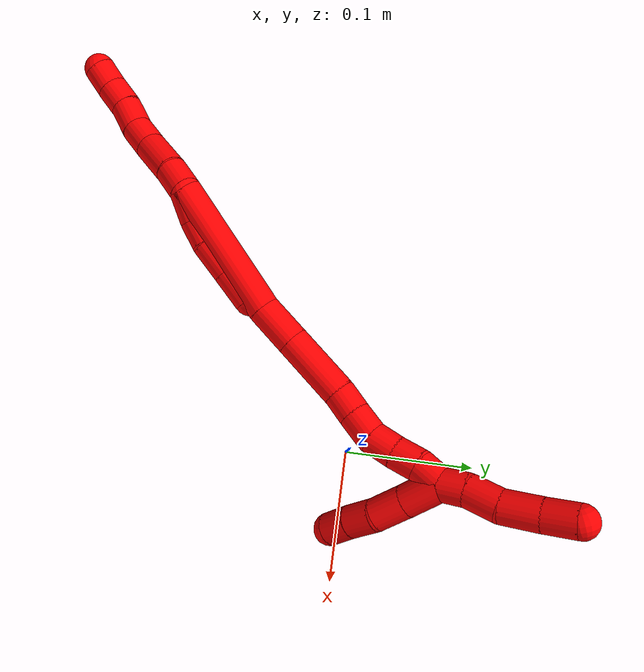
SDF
<sdf version="1.7">
 <world name="default">
  <model name="2">
   <static>0</static>
   <link name="2">
    <collision name="collision-cylinder-e_1_2_8">
     <pose>-0.00651 -0.002785 0.00963 0.281483 -0.575955 -0.083884</pose>
     <geometry><cylinder><radius>0.0125</radius><length>0.023907</length></cylinder></geometry>
     <surface>
      <friction><ode><mu>1.16</mu><mu2>1.16</mu2><slip1>0</slip1><slip2>0</slip2></ode></friction>
      <contact><ode><kp>1e+06</kp><kd>1</kd><max_vel>0</max_vel><min_depth>0.001</min_depth></ode></contact>
     </surface>
    </collision>
    <visual name="visual-cylinder-e_1_2_8">
     <pose>-0.00651 -0.002785 0.00963 0.281483 -0.575955 -0.083884</pose>
     <geometry><cylinder><radius>0.0125</radius><length>0.023907</length></cylinder></geometry>
     <material><ambient>1 0 0 1</ambient></material>
    </visual>
    <collision name="collision-cylinder-e_2_8_9">
     <pose>-0.025005 -0.010102 0.03224 0.335969 -0.716947 -0.126902</pose>
     <geometry><cylinder><radius>0.0125</radius><length>0.036477</length></cylinder></geometry>
     <surface>
      <friction><ode><mu>1.16</mu><mu2>1.16</mu2><slip1>0</slip1><slip2>0</slip2></ode></friction>
      <contact><ode><kp>1e+06</kp><kd>1</kd><max_vel>0</max_vel><min_depth>0.001</min_depth></ode></contact>
     </surface>
    </collision>
    <visual name="visual-cylinder-e_2_8_9">
     <pose>-0.025005 -0.010102 0.03224 0.335969 -0.716947 -0.126902</pose>
     <geometry><cylinder><radius>0.0125</radius><length>0.036477</length></cylinder></geometry>
     <material><ambient>1 0 0 1</ambient></material>
    </visual>
    <collision name="collision-cylinder-e_3_9_10">
     <pose>-0.043184 -0.017877 0.054629 0.331852 -0.556808 -0.09566</pose>
     <geometry><cylinder><radius>0.0125</radius><length>0.023446</length></cylinder></geometry>
     <surface>
      <friction><ode><mu>1.16</mu><mu2>1.16</mu2><slip1>0</slip1><slip2>0</slip2></ode></friction>
      <contact><ode><kp>1e+06</kp><kd>1</kd><max_vel>0</max_vel><min_depth>0.001</min_depth></ode></contact>
     </surface>
    </collision>
    <visual name="visual-cylinder-e_3_9_10">
     <pose>-0.043184 -0.017877 0.054629 0.331852 -0.556808 -0.09566</pose>
     <geometry><cylinder><radius>0.0125</radius><length>0.023446</length></cylinder></geometry>
     <material><ambient>1 0 0 1</ambient></material>
    </visual>
    <collision name="collision-cylinder-e_4_10_11">
     <pose>-0.054057 -0.023021 0.074951 0.172485 -0.399577 -0.03501</pose>
     <geometry><cylinder><radius>0.0125</radius><length>0.024048</length></cylinder></geometry>
     <surface>
      <friction><ode><mu>1.16</mu><mu2>1.16</mu2><slip1>0</slip1><slip2>0</slip2></ode></friction>
      <contact><ode><kp>1e+06</kp><kd>1</kd><max_vel>0</max_vel><min_depth>0.001</min_depth></ode></contact>
     </surface>
    </collision>
    <visual name="visual-cylinder-e_4_10_11">
     <pose>-0.054057 -0.023021 0.074951 0.172485 -0.399577 -0.03501</pose>
     <geometry><cylinder><radius>0.0125</radius><length>0.024048</length></cylinder></geometry>
     <material><ambient>1 0 0 1</ambient></material>
    </visual>
    <collision name="collision-cylinder-e_5_11_12">
     <pose>-0.062679 -0.028384 0.095446 0.346692 -0.369351 -0.065397</pose>
     <geometry><cylinder><radius>0.0125</radius><length>0.021852</length></cylinder></geometry>
     <surface>
      <friction><ode><mu>1.16</mu><mu2>1.16</mu2><slip1>0</slip1><slip2>0</slip2></ode></friction>
      <contact><ode><kp>1e+06</kp><kd>1</kd><max_vel>0</max_vel><min_depth>0.001</min_depth></ode></contact>
     </surface>
    </collision>
    <visual name="visual-cylinder-e_5_11_12">
     <pose>-0.062679 -0.028384 0.095446 0.346692 -0.369351 -0.065397</pose>
     <geometry><cylinder><radius>0.0125</radius><length>0.021852</length></cylinder></geometry>
     <material><ambient>1 0 0 1</ambient></material>
    </visual>
    <collision name="collision-cylinder-e_6_12_6">
     <pose>-0.068507 -0.034954 0.114491 0.317368 -0.18695 -0.030003</pose>
     <geometry><cylinder><radius>0.0125</radius><length>0.020271</length></cylinder></geometry>
     <surface>
      <friction><ode><mu>1.16</mu><mu2>1.16</mu2><slip1>0</slip1><slip2>0</slip2></ode></friction>
      <contact><ode><kp>1e+06</kp><kd>1</kd><max_vel>0</max_vel><min_depth>0.001</min_depth></ode></contact>
     </surface>
    </collision>
    <visual name="visual-cylinder-e_6_12_6">
     <pose>-0.068507 -0.034954 0.114491 0.317368 -0.18695 -0.030003</pose>
     <geometry><cylinder><radius>0.0125</radius><length>0.020271</length></cylinder></geometry>
     <material><ambient>1 0 0 1</ambient></material>
    </visual>
    <collision name="collision-cylinder-e_1_2_13">
     <pose>-0.00082 0.001346 -0.012068 -3.03054 -0.067434 1.09085</pose>
     <geometry><cylinder><radius>0.0125</radius><length>0.024341</length></cylinder></geometry>
     <surface>
      <friction><ode><mu>1.16</mu><mu2>1.16</mu2><slip1>0</slip1><slip2>0</slip2></ode></friction>
      <contact><ode><kp>1e+06</kp><kd>1</kd><max_vel>0</max_vel><min_depth>0.001</min_depth></ode></contact>
     </surface>
    </collision>
    <visual name="visual-cylinder-e_1_2_13">
     <pose>-0.00082 0.001346 -0.012068 -3.03054 -0.067434 1.09085</pose>
     <geometry><cylinder><radius>0.0125</radius><length>0.024341</length></cylinder></geometry>
     <material><ambient>1 0 0 1</ambient></material>
    </visual>
    <collision name="collision-cylinder-e_2_13_14">
     <pose>-6.9e-05 0.004779 -0.033826 -2.92936 0.157228 -1.27358</pose>
     <geometry><cylinder><radius>0.0125</radius><length>0.020072</length></cylinder></geometry>
     <surface>
      <friction><ode><mu>1.16</mu><mu2>1.16</mu2><slip1>0</slip1><slip2>0</slip2></ode></friction>
      <contact><ode><kp>1e+06</kp><kd>1</kd><max_vel>0</max_vel><min_depth>0.001</min_depth></ode></contact>
     </surface>
    </collision>
    <visual name="visual-cylinder-e_2_13_14">
     <pose>-6.9e-05 0.004779 -0.033826 -2.92936 0.157228 -1.27358</pose>
     <geometry><cylinder><radius>0.0125</radius><length>0.020072</length></cylinder></geometry>
     <material><ambient>1 0 0 1</ambient></material>
    </visual>
    <collision name="collision-cylinder-e_3_14_15">
     <pose>0.003797 0.011955 -0.056218 -2.76062 0.166157 -0.815297</pose>
     <geometry><cylinder><radius>0.0125</radius><length>0.02775</length></cylinder></geometry>
     <surface>
      <friction><ode><mu>1.16</mu><mu2>1.16</mu2><slip1>0</slip1><slip2>0</slip2></ode></friction>
      <contact><ode><kp>1e+06</kp><kd>1</kd><max_vel>0</max_vel><min_depth>0.001</min_depth></ode></contact>
     </surface>
    </collision>
    <visual name="visual-cylinder-e_3_14_15">
     <pose>0.003797 0.011955 -0.056218 -2.76062 0.166157 -0.815297</pose>
     <geometry><cylinder><radius>0.0125</radius><length>0.02775</length></cylinder></geometry>
     <material><ambient>1 0 0 1</ambient></material>
    </visual>
    <collision name="collision-cylinder-e_4_15_5">
     <pose>0.008367 0.022081 -0.081695 -2.76596 0.164137 -0.816887</pose>
     <geometry><cylinder><radius>0.0125</radius><length>0.027838</length></cylinder></geometry>
     <surface>
      <friction><ode><mu>1.16</mu><mu2>1.16</mu2><slip1>0</slip1><slip2>0</slip2></ode></friction>
      <contact><ode><kp>1e+06</kp><kd>1</kd><max_vel>0</max_vel><min_depth>0.001</min_depth></ode></contact>
     </surface>
    </collision>
    <visual name="visual-cylinder-e_4_15_5">
     <pose>0.008367 0.022081 -0.081695 -2.76596 0.164137 -0.816887</pose>
     <geometry><cylinder><radius>0.0125</radius><length>0.027838</length></cylinder></geometry>
     <material><ambient>1 0 0 1</ambient></material>
    </visual>
    <collision name="collision-cylinder-e_1_2_16">
     <pose>0.008794 0.01739 -0.051825 -2.81784 0.15951 -0.910292</pose>
     <geometry><cylinder><radius>0.0125</radius><length>0.110735</length></cylinder></geometry>
     <surface>
      <friction><ode><mu>1.16</mu><mu2>1.16</mu2><slip1>0</slip1><slip2>0</slip2></ode></friction>
      <contact><ode><kp>1e+06</kp><kd>1</kd><max_vel>0</max_vel><min_depth>0.001</min_depth></ode></contact>
     </surface>
    </collision>
    <visual name="visual-cylinder-e_1_2_16">
     <pose>0.008794 0.01739 -0.051825 -2.81784 0.15951 -0.910292</pose>
     <geometry><cylinder><radius>0.0125</radius><length>0.110735</length></cylinder></geometry>
     <material><ambient>1 0 0 1</ambient></material>
    </visual>
    <collision name="collision-cylinder-e_2_16_17">
     <pose>0.022581 0.041897 -0.118173 -2.68598 0.299416 -1.15364</pose>
     <geometry><cylinder><radius>0.0125</radius><length>0.033851</length></cylinder></geometry>
     <surface>
      <friction><ode><mu>1.16</mu><mu2>1.16</mu2><slip1>0</slip1><slip2>0</slip2></ode></friction>
      <contact><ode><kp>1e+06</kp><kd>1</kd><max_vel>0</max_vel><min_depth>0.001</min_depth></ode></contact>
     </surface>
    </collision>
    <visual name="visual-cylinder-e_2_16_17">
     <pose>0.022581 0.041897 -0.118173 -2.68598 0.299416 -1.15364</pose>
     <geometry><cylinder><radius>0.0125</radius><length>0.033851</length></cylinder></geometry>
     <material><ambient>1 0 0 1</ambient></material>
    </visual>
    <collision name="collision-cylinder-e_3_17_18">
     <pose>0.035588 0.059978 -0.155178 -2.68782 0.310051 -1.19017</pose>
     <geometry><cylinder><radius>0.0125</radius><length>0.052534</length></cylinder></geometry>
     <surface>
      <friction><ode><mu>1.16</mu><mu2>1.16</mu2><slip1>0</slip1><slip2>0</slip2></ode></friction>
      <contact><ode><kp>1e+06</kp><kd>1</kd><max_vel>0</max_vel><min_depth>0.001</min_depth></ode></contact>
     </surface>
    </collision>
    <visual name="visual-cylinder-e_3_17_18">
     <pose>0.035588 0.059978 -0.155178 -2.68782 0.310051 -1.19017</pose>
     <geometry><cylinder><radius>0.0125</radius><length>0.052534</length></cylinder></geometry>
     <material><ambient>1 0 0 1</ambient></material>
    </visual>
    <collision name="collision-cylinder-e_4_18_19">
     <pose>0.047642 0.073843 -0.186478 -2.82388 0.410598 -1.83005</pose>
     <geometry><cylinder><radius>0.0125</radius><length>0.020245</length></cylinder></geometry>
     <surface>
      <friction><ode><mu>1.16</mu><mu2>1.16</mu2><slip1>0</slip1><slip2>0</slip2></ode></friction>
      <contact><ode><kp>1e+06</kp><kd>1</kd><max_vel>0</max_vel><min_depth>0.001</min_depth></ode></contact>
     </surface>
    </collision>
    <visual name="visual-cylinder-e_4_18_19">
     <pose>0.047642 0.073843 -0.186478 -2.82388 0.410598 -1.83005</pose>
     <geometry><cylinder><radius>0.0125</radius><length>0.020245</length></cylinder></geometry>
     <material><ambient>1 0 0 1</ambient></material>
    </visual>
    <collision name="collision-cylinder-e_5_19_20">
     <pose>0.056539 0.07997 -0.204409 -2.80118 0.465442 -1.8868</pose>
     <geometry><cylinder><radius>0.0125</radius><length>0.02164</length></cylinder></geometry>
     <surface>
      <friction><ode><mu>1.16</mu><mu2>1.16</mu2><slip1>0</slip1><slip2>0</slip2></ode></friction>
      <contact><ode><kp>1e+06</kp><kd>1</kd><max_vel>0</max_vel><min_depth>0.001</min_depth></ode></contact>
     </surface>
    </collision>
    <visual name="visual-cylinder-e_5_19_20">
     <pose>0.056539 0.07997 -0.204409 -2.80118 0.465442 -1.8868</pose>
     <geometry><cylinder><radius>0.0125</radius><length>0.02164</length></cylinder></geometry>
     <material><ambient>1 0 0 1</ambient></material>
    </visual>
    <collision name="collision-cylinder-e_6_20_21">
     <pose>0.066394 0.089153 -0.220258 -2.4177 0.507484 -1.20107</pose>
     <geometry><cylinder><radius>0.0125</radius><length>0.020574</length></cylinder></geometry>
     <surface>
      <friction><ode><mu>1.16</mu><mu2>1.16</mu2><slip1>0</slip1><slip2>0</slip2></ode></friction>
      <contact><ode><kp>1e+06</kp><kd>1</kd><max_vel>0</max_vel><min_depth>0.001</min_depth></ode></contact>
     </surface>
    </collision>
    <visual name="visual-cylinder-e_6_20_21">
     <pose>0.066394 0.089153 -0.220258 -2.4177 0.507484 -1.20107</pose>
     <geometry><cylinder><radius>0.0125</radius><length>0.020574</length></cylinder></geometry>
     <material><ambient>1 0 0 1</ambient></material>
    </visual>
    <collision name="collision-cylinder-e_7_21_22">
     <pose>0.077028 0.101144 -0.232873 -2.34291 0.589366 -1.247</pose>
     <geometry><cylinder><radius>0.0125</radius><length>0.020273</length></cylinder></geometry>
     <surface>
      <friction><ode><mu>1.16</mu><mu2>1.16</mu2><slip1>0</slip1><slip2>0</slip2></ode></friction>
      <contact><ode><kp>1e+06</kp><kd>1</kd><max_vel>0</max_vel><min_depth>0.001</min_depth></ode></contact>
     </surface>
    </collision>
    <visual name="visual-cylinder-e_7_21_22">
     <pose>0.077028 0.101144 -0.232873 -2.34291 0.589366 -1.247</pose>
     <geometry><cylinder><radius>0.0125</radius><length>0.020273</length></cylinder></geometry>
     <material><ambient>1 0 0 1</ambient></material>
    </visual>
    <collision name="collision-cylinder-e_8_22_1">
     <pose>0.088218 0.111534 -0.24594 -2.59715 0.584156 -1.64501</pose>
     <geometry><cylinder><radius>0.0125</radius><length>0.020149</length></cylinder></geometry>
     <surface>
      <friction><ode><mu>1.16</mu><mu2>1.16</mu2><slip1>0</slip1><slip2>0</slip2></ode></friction>
      <contact><ode><kp>1e+06</kp><kd>1</kd><max_vel>0</max_vel><min_depth>0.001</min_depth></ode></contact>
     </surface>
    </collision>
    <visual name="visual-cylinder-e_8_22_1">
     <pose>0.088218 0.111534 -0.24594 -2.59715 0.584156 -1.64501</pose>
     <geometry><cylinder><radius>0.0125</radius><length>0.020149</length></cylinder></geometry>
     <material><ambient>1 0 0 1</ambient></material>
    </visual>
    <collision name="collision-cylinder-e_1_1_23">
     <pose>0.099913 0.123103 -0.256356 -1.99126 0.660308 -0.972563</pose>
     <geometry><cylinder><radius>0.0125</radius><length>0.020019</length></cylinder></geometry>
     <surface>
      <friction><ode><mu>1.16</mu><mu2>1.16</mu2><slip1>0</slip1><slip2>0</slip2></ode></friction>
      <contact><ode><kp>1e+06</kp><kd>1</kd><max_vel>0</max_vel><min_depth>0.001</min_depth></ode></contact>
     </surface>
    </collision>
    <visual name="visual-cylinder-e_1_1_23">
     <pose>0.099913 0.123103 -0.256356 -1.99126 0.660308 -0.972563</pose>
     <geometry><cylinder><radius>0.0125</radius><length>0.020019</length></cylinder></geometry>
     <material><ambient>1 0 0 1</ambient></material>
    </visual>
    <collision name="collision-cylinder-e_2_23_24">
     <pose>0.114242 0.137691 -0.265911 -2.28025 0.700429 -1.34343</pose>
     <geometry><cylinder><radius>0.0125</radius><length>0.025413</length></cylinder></geometry>
     <surface>
      <friction><ode><mu>1.16</mu><mu2>1.16</mu2><slip1>0</slip1><slip2>0</slip2></ode></friction>
      <contact><ode><kp>1e+06</kp><kd>1</kd><max_vel>0</max_vel><min_depth>0.001</min_depth></ode></contact>
     </surface>
    </collision>
    <visual name="visual-cylinder-e_2_23_24">
     <pose>0.114242 0.137691 -0.265911 -2.28025 0.700429 -1.34343</pose>
     <geometry><cylinder><radius>0.0125</radius><length>0.025413</length></cylinder></geometry>
     <material><ambient>1 0 0 1</ambient></material>
    </visual>
    <collision name="collision-cylinder-e_3_24_25">
     <pose>0.131489 0.155747 -0.276659 -1.96296 0.664438 -0.952793</pose>
     <geometry><cylinder><radius>0.0125</radius><length>0.029375</length></cylinder></geometry>
     <surface>
      <friction><ode><mu>1.16</mu><mu2>1.16</mu2><slip1>0</slip1><slip2>0</slip2></ode></friction>
      <contact><ode><kp>1e+06</kp><kd>1</kd><max_vel>0</max_vel><min_depth>0.001</min_depth></ode></contact>
     </surface>
    </collision>
    <visual name="visual-cylinder-e_3_24_25">
     <pose>0.131489 0.155747 -0.276659 -1.96296 0.664438 -0.952793</pose>
     <geometry><cylinder><radius>0.0125</radius><length>0.029375</length></cylinder></geometry>
     <material><ambient>1 0 0 1</ambient></material>
    </visual>
    <collision name="collision-cylinder-e_4_25_4">
     <pose>0.14906 0.175212 -0.284093 -1.90162 0.742299 -0.998244</pose>
     <geometry><cylinder><radius>0.0125</radius><length>0.025193</length></cylinder></geometry>
     <surface>
      <friction><ode><mu>1.16</mu><mu2>1.16</mu2><slip1>0</slip1><slip2>0</slip2></ode></friction>
      <contact><ode><kp>1e+06</kp><kd>1</kd><max_vel>0</max_vel><min_depth>0.001</min_depth></ode></contact>
     </surface>
    </collision>
    <visual name="visual-cylinder-e_4_25_4">
     <pose>0.14906 0.175212 -0.284093 -1.90162 0.742299 -0.998244</pose>
     <geometry><cylinder><radius>0.0125</radius><length>0.025193</length></cylinder></geometry>
     <material><ambient>1 0 0 1</ambient></material>
    </visual>
    <collision name="collision-cylinder-e_1_1_26">
     <pose>0.085781 0.104132 -0.257423 1.92103 -0.568398 -0.791327</pose>
     <geometry><cylinder><radius>0.0125</radius><length>0.029697</length></cylinder></geometry>
     <surface>
      <friction><ode><mu>1.16</mu><mu2>1.16</mu2><slip1>0</slip1><slip2>0</slip2></ode></friction>
      <contact><ode><kp>1e+06</kp><kd>1</kd><max_vel>0</max_vel><min_depth>0.001</min_depth></ode></contact>
     </surface>
    </collision>
    <visual name="visual-cylinder-e_1_1_26">
     <pose>0.085781 0.104132 -0.257423 1.92103 -0.568398 -0.791327</pose>
     <geometry><cylinder><radius>0.0125</radius><length>0.029697</length></cylinder></geometry>
     <material><ambient>1 0 0 1</ambient></material>
    </visual>
    <collision name="collision-cylinder-e_2_26_27">
     <pose>0.070947 0.081838 -0.265206 1.89048 -0.552221 -0.74765</pose>
     <geometry><cylinder><radius>0.0125</radius><length>0.026083</length></cylinder></geometry>
     <surface>
      <friction><ode><mu>1.16</mu><mu2>1.16</mu2><slip1>0</slip1><slip2>0</slip2></ode></friction>
      <contact><ode><kp>1e+06</kp><kd>1</kd><max_vel>0</max_vel><min_depth>0.001</min_depth></ode></contact>
     </surface>
    </collision>
    <visual name="visual-cylinder-e_2_26_27">
     <pose>0.070947 0.081838 -0.265206 1.89048 -0.552221 -0.74765</pose>
     <geometry><cylinder><radius>0.0125</radius><length>0.026083</length></cylinder></geometry>
     <material><ambient>1 0 0 1</ambient></material>
    </visual>
    <collision name="collision-cylinder-e_3_27_28">
     <pose>0.056176 0.063337 -0.27059 1.80448 -0.769673 -0.947602</pose>
     <geometry><cylinder><radius>0.0125</radius><length>0.022789</length></cylinder></geometry>
     <surface>
      <friction><ode><mu>1.16</mu><mu2>1.16</mu2><slip1>0</slip1><slip2>0</slip2></ode></friction>
      <contact><ode><kp>1e+06</kp><kd>1</kd><max_vel>0</max_vel><min_depth>0.001</min_depth></ode></contact>
     </surface>
    </collision>
    <visual name="visual-cylinder-e_3_27_28">
     <pose>0.056176 0.063337 -0.27059 1.80448 -0.769673 -0.947602</pose>
     <geometry><cylinder><radius>0.0125</radius><length>0.022789</length></cylinder></geometry>
     <material><ambient>1 0 0 1</ambient></material>
    </visual>
    <collision name="collision-cylinder-e_4_28_3">
     <pose>0.040626 0.048248 -0.274923 1.9003 -0.791111 -1.05729</pose>
     <geometry><cylinder><radius>0.0125</radius><length>0.02143</length></cylinder></geometry>
     <surface>
      <friction><ode><mu>1.16</mu><mu2>1.16</mu2><slip1>0</slip1><slip2>0</slip2></ode></friction>
      <contact><ode><kp>1e+06</kp><kd>1</kd><max_vel>0</max_vel><min_depth>0.001</min_depth></ode></contact>
     </surface>
    </collision>
    <visual name="visual-cylinder-e_4_28_3">
     <pose>0.040626 0.048248 -0.274923 1.9003 -0.791111 -1.05729</pose>
     <geometry><cylinder><radius>0.0125</radius><length>0.02143</length></cylinder></geometry>
     <material><ambient>1 0 0 1</ambient></material>
    </visual>
    <collision name="collision-sphere-3">
     <pose>0.033006 0.04112 -0.27736 0 -0 0</pose>
     <geometry><sphere><radius>0.0125</radius></sphere></geometry>
     <surface>
      <friction><ode><mu>1.16</mu><mu2>1.16</mu2><slip1>0</slip1><slip2>0</slip2></ode></friction>
      <contact><ode><kp>1e+06</kp><kd>1</kd><max_vel>0</max_vel><min_depth>0.001</min_depth></ode></contact>
     </surface>
    </collision>
    <visual name="visual-sphere-3">
     <pose>0.033006 0.04112 -0.27736 0 -0 0</pose>
     <geometry><sphere><radius>0.0125</radius></sphere></geometry>
     <material><ambient>1 0 0 1</ambient></material>
    </visual>
    <collision name="collision-sphere-28">
     <pose>0.048246 0.055376 -0.272485 0 -0 0</pose>
     <geometry><sphere><radius>0.0125</radius></sphere></geometry>
     <surface>
      <friction><ode><mu>1.16</mu><mu2>1.16</mu2><slip1>0</slip1><slip2>0</slip2></ode></friction>
      <contact><ode><kp>1e+06</kp><kd>1</kd><max_vel>0</max_vel><min_depth>0.001</min_depth></ode></contact>
     </surface>
    </collision>
    <visual name="visual-sphere-28">
     <pose>0.048246 0.055376 -0.272485 0 -0 0</pose>
     <geometry><sphere><radius>0.0125</radius></sphere></geometry>
     <material><ambient>1 0 0 1</ambient></material>
    </visual>
    <collision name="collision-sphere-27">
     <pose>0.064105 0.071297 -0.268695 0 -0 0</pose>
     <geometry><sphere><radius>0.0125</radius></sphere></geometry>
     <surface>
      <friction><ode><mu>1.16</mu><mu2>1.16</mu2><slip1>0</slip1><slip2>0</slip2></ode></friction>
      <contact><ode><kp>1e+06</kp><kd>1</kd><max_vel>0</max_vel><min_depth>0.001</min_depth></ode></contact>
     </surface>
    </collision>
    <visual name="visual-sphere-27">
     <pose>0.064105 0.071297 -0.268695 0 -0 0</pose>
     <geometry><sphere><radius>0.0125</radius></sphere></geometry>
     <material><ambient>1 0 0 1</ambient></material>
    </visual>
    <collision name="collision-sphere-26">
     <pose>0.077788 0.092378 -0.261717 0 -0 0</pose>
     <geometry><sphere><radius>0.0125</radius></sphere></geometry>
     <surface>
      <friction><ode><mu>1.16</mu><mu2>1.16</mu2><slip1>0</slip1><slip2>0</slip2></ode></friction>
      <contact><ode><kp>1e+06</kp><kd>1</kd><max_vel>0</max_vel><min_depth>0.001</min_depth></ode></contact>
     </surface>
    </collision>
    <visual name="visual-sphere-26">
     <pose>0.077788 0.092378 -0.261717 0 -0 0</pose>
     <geometry><sphere><radius>0.0125</radius></sphere></geometry>
     <material><ambient>1 0 0 1</ambient></material>
    </visual>
    <collision name="collision-sphere-4">
     <pose>0.157575 0.183991 -0.287109 0 -0 0</pose>
     <geometry><sphere><radius>0.0125</radius></sphere></geometry>
     <surface>
      <friction><ode><mu>1.16</mu><mu2>1.16</mu2><slip1>0</slip1><slip2>0</slip2></ode></friction>
      <contact><ode><kp>1e+06</kp><kd>1</kd><max_vel>0</max_vel><min_depth>0.001</min_depth></ode></contact>
     </surface>
    </collision>
    <visual name="visual-sphere-4">
     <pose>0.157575 0.183991 -0.287109 0 -0 0</pose>
     <geometry><sphere><radius>0.0125</radius></sphere></geometry>
     <material><ambient>1 0 0 1</ambient></material>
    </visual>
    <collision name="collision-sphere-25">
     <pose>0.140545 0.166432 -0.281078 0 -0 0</pose>
     <geometry><sphere><radius>0.0125</radius></sphere></geometry>
     <surface>
      <friction><ode><mu>1.16</mu><mu2>1.16</mu2><slip1>0</slip1><slip2>0</slip2></ode></friction>
      <contact><ode><kp>1e+06</kp><kd>1</kd><max_vel>0</max_vel><min_depth>0.001</min_depth></ode></contact>
     </surface>
    </collision>
    <visual name="visual-sphere-25">
     <pose>0.140545 0.166432 -0.281078 0 -0 0</pose>
     <geometry><sphere><radius>0.0125</radius></sphere></geometry>
     <material><ambient>1 0 0 1</ambient></material>
    </visual>
    <collision name="collision-sphere-24">
     <pose>0.122432 0.145062 -0.27224 0 -0 0</pose>
     <geometry><sphere><radius>0.0125</radius></sphere></geometry>
     <surface>
      <friction><ode><mu>1.16</mu><mu2>1.16</mu2><slip1>0</slip1><slip2>0</slip2></ode></friction>
      <contact><ode><kp>1e+06</kp><kd>1</kd><max_vel>0</max_vel><min_depth>0.001</min_depth></ode></contact>
     </surface>
    </collision>
    <visual name="visual-sphere-24">
     <pose>0.122432 0.145062 -0.27224 0 -0 0</pose>
     <geometry><sphere><radius>0.0125</radius></sphere></geometry>
     <material><ambient>1 0 0 1</ambient></material>
    </visual>
    <collision name="collision-sphere-23">
     <pose>0.106052 0.13032 -0.259583 0 -0 0</pose>
     <geometry><sphere><radius>0.0125</radius></sphere></geometry>
     <surface>
      <friction><ode><mu>1.16</mu><mu2>1.16</mu2><slip1>0</slip1><slip2>0</slip2></ode></friction>
      <contact><ode><kp>1e+06</kp><kd>1</kd><max_vel>0</max_vel><min_depth>0.001</min_depth></ode></contact>
     </surface>
    </collision>
    <visual name="visual-sphere-23">
     <pose>0.106052 0.13032 -0.259583 0 -0 0</pose>
     <geometry><sphere><radius>0.0125</radius></sphere></geometry>
     <material><ambient>1 0 0 1</ambient></material>
    </visual>
    <collision name="collision-sphere-1">
     <pose>0.093774 0.115886 -0.253129 0 -0 0</pose>
     <geometry><sphere><radius>0.0125</radius></sphere></geometry>
     <surface>
      <friction><ode><mu>1.16</mu><mu2>1.16</mu2><slip1>0</slip1><slip2>0</slip2></ode></friction>
      <contact><ode><kp>1e+06</kp><kd>1</kd><max_vel>0</max_vel><min_depth>0.001</min_depth></ode></contact>
     </surface>
    </collision>
    <visual name="visual-sphere-1">
     <pose>0.093774 0.115886 -0.253129 0 -0 0</pose>
     <geometry><sphere><radius>0.0125</radius></sphere></geometry>
     <material><ambient>1 0 0 1</ambient></material>
    </visual>
    <collision name="collision-sphere-22">
     <pose>0.082662 0.107181 -0.238752 0 -0 0</pose>
     <geometry><sphere><radius>0.0125</radius></sphere></geometry>
     <surface>
      <friction><ode><mu>1.16</mu><mu2>1.16</mu2><slip1>0</slip1><slip2>0</slip2></ode></friction>
      <contact><ode><kp>1e+06</kp><kd>1</kd><max_vel>0</max_vel><min_depth>0.001</min_depth></ode></contact>
     </surface>
    </collision>
    <visual name="visual-sphere-22">
     <pose>0.082662 0.107181 -0.238752 0 -0 0</pose>
     <geometry><sphere><radius>0.0125</radius></sphere></geometry>
     <material><ambient>1 0 0 1</ambient></material>
    </visual>
    <collision name="collision-sphere-21">
     <pose>0.071393 0.095107 -0.226994 0 -0 0</pose>
     <geometry><sphere><radius>0.0125</radius></sphere></geometry>
     <surface>
      <friction><ode><mu>1.16</mu><mu2>1.16</mu2><slip1>0</slip1><slip2>0</slip2></ode></friction>
      <contact><ode><kp>1e+06</kp><kd>1</kd><max_vel>0</max_vel><min_depth>0.001</min_depth></ode></contact>
     </surface>
    </collision>
    <visual name="visual-sphere-21">
     <pose>0.071393 0.095107 -0.226994 0 -0 0</pose>
     <geometry><sphere><radius>0.0125</radius></sphere></geometry>
     <material><ambient>1 0 0 1</ambient></material>
    </visual>
    <collision name="collision-sphere-12">
     <pose>-0.066623 -0.031846 0.105029 0 -0 0</pose>
     <geometry><sphere><radius>0.0125</radius></sphere></geometry>
     <surface>
      <friction><ode><mu>1.16</mu><mu2>1.16</mu2><slip1>0</slip1><slip2>0</slip2></ode></friction>
      <contact><ode><kp>1e+06</kp><kd>1</kd><max_vel>0</max_vel><min_depth>0.001</min_depth></ode></contact>
     </surface>
    </collision>
    <visual name="visual-sphere-12">
     <pose>-0.066623 -0.031846 0.105029 0 -0 0</pose>
     <geometry><sphere><radius>0.0125</radius></sphere></geometry>
     <material><ambient>1 0 0 1</ambient></material>
    </visual>
    <collision name="collision-sphere-11">
     <pose>-0.058735 -0.024922 0.085863 0 -0 0</pose>
     <geometry><sphere><radius>0.0125</radius></sphere></geometry>
     <surface>
      <friction><ode><mu>1.16</mu><mu2>1.16</mu2><slip1>0</slip1><slip2>0</slip2></ode></friction>
      <contact><ode><kp>1e+06</kp><kd>1</kd><max_vel>0</max_vel><min_depth>0.001</min_depth></ode></contact>
     </surface>
    </collision>
    <visual name="visual-sphere-11">
     <pose>-0.058735 -0.024922 0.085863 0 -0 0</pose>
     <geometry><sphere><radius>0.0125</radius></sphere></geometry>
     <material><ambient>1 0 0 1</ambient></material>
    </visual>
    <collision name="collision-sphere-10">
     <pose>-0.049379 -0.021119 0.064039 0 -0 0</pose>
     <geometry><sphere><radius>0.0125</radius></sphere></geometry>
     <surface>
      <friction><ode><mu>1.16</mu><mu2>1.16</mu2><slip1>0</slip1><slip2>0</slip2></ode></friction>
      <contact><ode><kp>1e+06</kp><kd>1</kd><max_vel>0</max_vel><min_depth>0.001</min_depth></ode></contact>
     </surface>
    </collision>
    <visual name="visual-sphere-10">
     <pose>-0.049379 -0.021119 0.064039 0 -0 0</pose>
     <geometry><sphere><radius>0.0125</radius></sphere></geometry>
     <material><ambient>1 0 0 1</ambient></material>
    </visual>
    <collision name="collision-sphere-9">
     <pose>-0.036989 -0.014635 0.04522 0 -0 0</pose>
     <geometry><sphere><radius>0.0125</radius></sphere></geometry>
     <surface>
      <friction><ode><mu>1.16</mu><mu2>1.16</mu2><slip1>0</slip1><slip2>0</slip2></ode></friction>
      <contact><ode><kp>1e+06</kp><kd>1</kd><max_vel>0</max_vel><min_depth>0.001</min_depth></ode></contact>
     </surface>
    </collision>
    <visual name="visual-sphere-9">
     <pose>-0.036989 -0.014635 0.04522 0 -0 0</pose>
     <geometry><sphere><radius>0.0125</radius></sphere></geometry>
     <material><ambient>1 0 0 1</ambient></material>
    </visual>
    <collision name="collision-sphere-2">
     <geometry><sphere><radius>0.0125</radius></sphere></geometry>
     <surface>
      <friction><ode><mu>1.16</mu><mu2>1.16</mu2><slip1>0</slip1><slip2>0</slip2></ode></friction>
      <contact><ode><kp>1e+06</kp><kd>1</kd><max_vel>0</max_vel><min_depth>0.001</min_depth></ode></contact>
     </surface>
    </collision>
    <visual name="visual-sphere-2">
     <geometry><sphere><radius>0.0125</radius></sphere></geometry>
     <material><ambient>1 0 0 1</ambient></material>
    </visual>
    <collision name="collision-sphere-19">
     <pose>0.051683 0.076742 -0.195295 0 -0 0</pose>
     <geometry><sphere><radius>0.0125</radius></sphere></geometry>
     <surface>
      <friction><ode><mu>1.16</mu><mu2>1.16</mu2><slip1>0</slip1><slip2>0</slip2></ode></friction>
      <contact><ode><kp>1e+06</kp><kd>1</kd><max_vel>0</max_vel><min_depth>0.001</min_depth></ode></contact>
     </surface>
    </collision>
    <visual name="visual-sphere-19">
     <pose>0.051683 0.076742 -0.195295 0 -0 0</pose>
     <geometry><sphere><radius>0.0125</radius></sphere></geometry>
     <material><ambient>1 0 0 1</ambient></material>
    </visual>
    <collision name="collision-sphere-8">
     <pose>-0.01302 -0.005569 0.019261 0 -0 0</pose>
     <geometry><sphere><radius>0.0125</radius></sphere></geometry>
     <surface>
      <friction><ode><mu>1.16</mu><mu2>1.16</mu2><slip1>0</slip1><slip2>0</slip2></ode></friction>
      <contact><ode><kp>1e+06</kp><kd>1</kd><max_vel>0</max_vel><min_depth>0.001</min_depth></ode></contact>
     </surface>
    </collision>
    <visual name="visual-sphere-8">
     <pose>-0.01302 -0.005569 0.019261 0 -0 0</pose>
     <geometry><sphere><radius>0.0125</radius></sphere></geometry>
     <material><ambient>1 0 0 1</ambient></material>
    </visual>
    <collision name="collision-sphere-6">
     <pose>-0.070391 -0.038062 0.123952 0 -0 0</pose>
     <geometry><sphere><radius>0.0125</radius></sphere></geometry>
     <surface>
      <friction><ode><mu>1.16</mu><mu2>1.16</mu2><slip1>0</slip1><slip2>0</slip2></ode></friction>
      <contact><ode><kp>1e+06</kp><kd>1</kd><max_vel>0</max_vel><min_depth>0.001</min_depth></ode></contact>
     </surface>
    </collision>
    <visual name="visual-sphere-6">
     <pose>-0.070391 -0.038062 0.123952 0 -0 0</pose>
     <geometry><sphere><radius>0.0125</radius></sphere></geometry>
     <material><ambient>1 0 0 1</ambient></material>
    </visual>
    <collision name="collision-sphere-13">
     <pose>-0.00164 0.002691 -0.024136 0 -0 0</pose>
     <geometry><sphere><radius>0.0125</radius></sphere></geometry>
     <surface>
      <friction><ode><mu>1.16</mu><mu2>1.16</mu2><slip1>0</slip1><slip2>0</slip2></ode></friction>
      <contact><ode><kp>1e+06</kp><kd>1</kd><max_vel>0</max_vel><min_depth>0.001</min_depth></ode></contact>
     </surface>
    </collision>
    <visual name="visual-sphere-13">
     <pose>-0.00164 0.002691 -0.024136 0 -0 0</pose>
     <geometry><sphere><radius>0.0125</radius></sphere></geometry>
     <material><ambient>1 0 0 1</ambient></material>
    </visual>
    <collision name="collision-sphere-14">
     <pose>0.001503 0.006867 -0.043516 0 -0 0</pose>
     <geometry><sphere><radius>0.0125</radius></sphere></geometry>
     <surface>
      <friction><ode><mu>1.16</mu><mu2>1.16</mu2><slip1>0</slip1><slip2>0</slip2></ode></friction>
      <contact><ode><kp>1e+06</kp><kd>1</kd><max_vel>0</max_vel><min_depth>0.001</min_depth></ode></contact>
     </surface>
    </collision>
    <visual name="visual-sphere-14">
     <pose>0.001503 0.006867 -0.043516 0 -0 0</pose>
     <geometry><sphere><radius>0.0125</radius></sphere></geometry>
     <material><ambient>1 0 0 1</ambient></material>
    </visual>
    <collision name="collision-sphere-15">
     <pose>0.006092 0.017043 -0.068921 0 -0 0</pose>
     <geometry><sphere><radius>0.0125</radius></sphere></geometry>
     <surface>
      <friction><ode><mu>1.16</mu><mu2>1.16</mu2><slip1>0</slip1><slip2>0</slip2></ode></friction>
      <contact><ode><kp>1e+06</kp><kd>1</kd><max_vel>0</max_vel><min_depth>0.001</min_depth></ode></contact>
     </surface>
    </collision>
    <visual name="visual-sphere-15">
     <pose>0.006092 0.017043 -0.068921 0 -0 0</pose>
     <geometry><sphere><radius>0.0125</radius></sphere></geometry>
     <material><ambient>1 0 0 1</ambient></material>
    </visual>
    <collision name="collision-sphere-5">
     <pose>0.010641 0.027119 -0.094469 0 -0 0</pose>
     <geometry><sphere><radius>0.0125</radius></sphere></geometry>
     <surface>
      <friction><ode><mu>1.16</mu><mu2>1.16</mu2><slip1>0</slip1><slip2>0</slip2></ode></friction>
      <contact><ode><kp>1e+06</kp><kd>1</kd><max_vel>0</max_vel><min_depth>0.001</min_depth></ode></contact>
     </surface>
    </collision>
    <visual name="visual-sphere-5">
     <pose>0.010641 0.027119 -0.094469 0 -0 0</pose>
     <geometry><sphere><radius>0.0125</radius></sphere></geometry>
     <material><ambient>1 0 0 1</ambient></material>
    </visual>
    <collision name="collision-sphere-16">
     <pose>0.017589 0.034781 -0.10365 0 -0 0</pose>
     <geometry><sphere><radius>0.0125</radius></sphere></geometry>
     <surface>
      <friction><ode><mu>1.16</mu><mu2>1.16</mu2><slip1>0</slip1><slip2>0</slip2></ode></friction>
      <contact><ode><kp>1e+06</kp><kd>1</kd><max_vel>0</max_vel><min_depth>0.001</min_depth></ode></contact>
     </surface>
    </collision>
    <visual name="visual-sphere-16">
     <pose>0.017589 0.034781 -0.10365 0 -0 0</pose>
     <geometry><sphere><radius>0.0125</radius></sphere></geometry>
     <material><ambient>1 0 0 1</ambient></material>
    </visual>
    <collision name="collision-sphere-17">
     <pose>0.027573 0.049013 -0.132695 0 -0 0</pose>
     <geometry><sphere><radius>0.0125</radius></sphere></geometry>
     <surface>
      <friction><ode><mu>1.16</mu><mu2>1.16</mu2><slip1>0</slip1><slip2>0</slip2></ode></friction>
      <contact><ode><kp>1e+06</kp><kd>1</kd><max_vel>0</max_vel><min_depth>0.001</min_depth></ode></contact>
     </surface>
    </collision>
    <visual name="visual-sphere-17">
     <pose>0.027573 0.049013 -0.132695 0 -0 0</pose>
     <geometry><sphere><radius>0.0125</radius></sphere></geometry>
     <material><ambient>1 0 0 1</ambient></material>
    </visual>
    <collision name="collision-sphere-18">
     <pose>0.043602 0.070943 -0.177661 0 -0 0</pose>
     <geometry><sphere><radius>0.0125</radius></sphere></geometry>
     <surface>
      <friction><ode><mu>1.16</mu><mu2>1.16</mu2><slip1>0</slip1><slip2>0</slip2></ode></friction>
      <contact><ode><kp>1e+06</kp><kd>1</kd><max_vel>0</max_vel><min_depth>0.001</min_depth></ode></contact>
     </surface>
    </collision>
    <visual name="visual-sphere-18">
     <pose>0.043602 0.070943 -0.177661 0 -0 0</pose>
     <geometry><sphere><radius>0.0125</radius></sphere></geometry>
     <material><ambient>1 0 0 1</ambient></material>
    </visual>
    <collision name="collision-sphere-20">
     <pose>0.061395 0.083198 -0.213523 0 -0 0</pose>
     <geometry><sphere><radius>0.0125</radius></sphere></geometry>
     <surface>
      <friction><ode><mu>1.16</mu><mu2>1.16</mu2><slip1>0</slip1><slip2>0</slip2></ode></friction>
      <contact><ode><kp>1e+06</kp><kd>1</kd><max_vel>0</max_vel><min_depth>0.001</min_depth></ode></contact>
     </surface>
    </collision>
    <visual name="visual-sphere-20">
     <pose>0.061395 0.083198 -0.213523 0 -0 0</pose>
     <geometry><sphere><radius>0.0125</radius></sphere></geometry>
     <material><ambient>1 0 0 1</ambient></material>
    </visual>
    <inertial>
     <pose>0.031666 0.049131 -0.120003 0 -0 0</pose>
     <mass>0.75</mass>
     <inertia>
      <ixx>-2.4e-05</ixx>
      <ixy>0</ixy>
      <ixz>0</ixz>
      <iyy>-0.000174</iyy>
      <iyz>0</iyz>
      <izz>-9e-05</izz>
     </inertia>
    </inertial>
   </link>
   <pose>-0.180863 -0.149762 0.050975 -0.633088 -1.31296 1.02646</pose>
  </model>
 </world>
</sdf>
